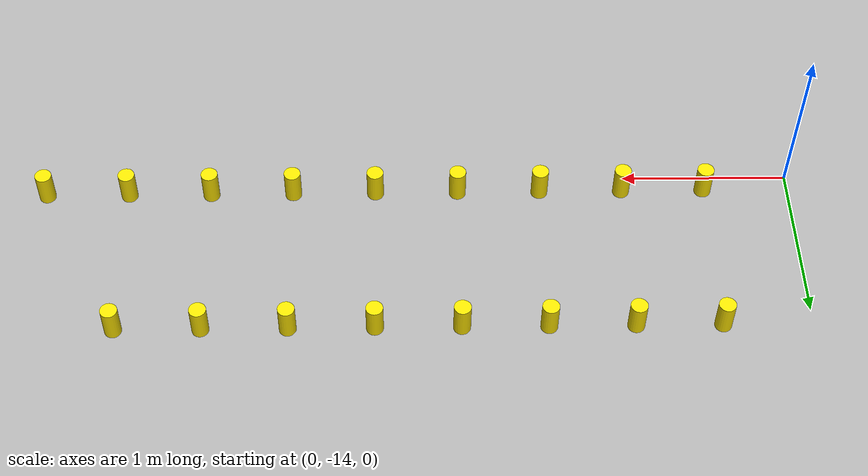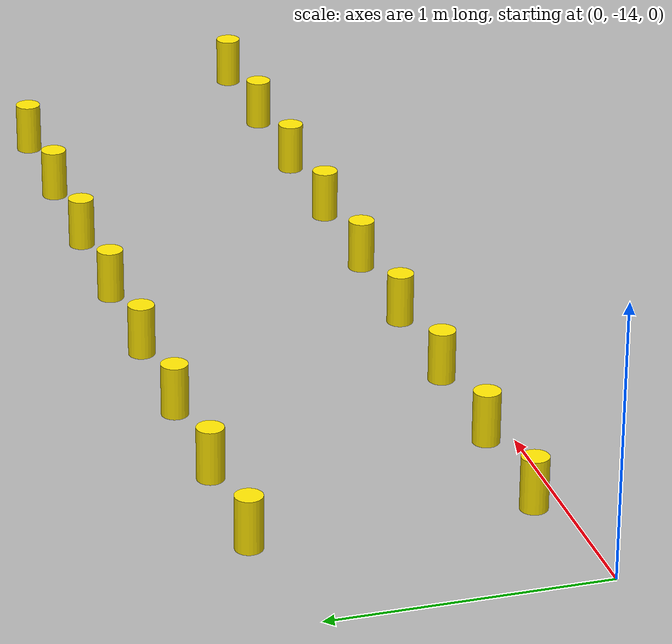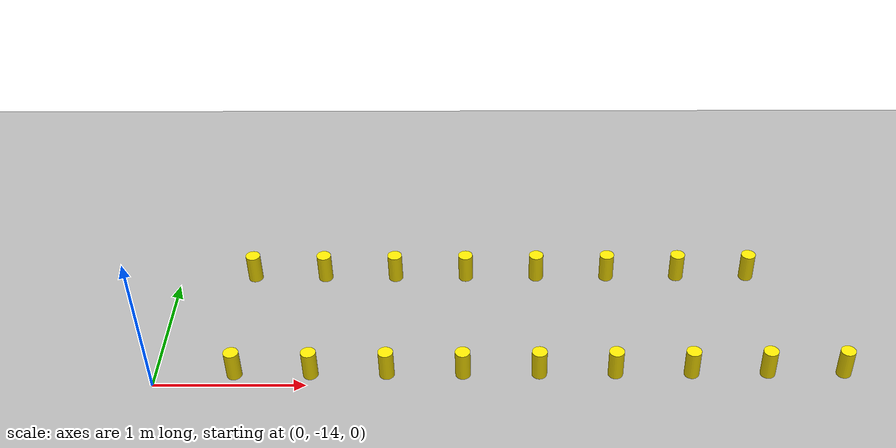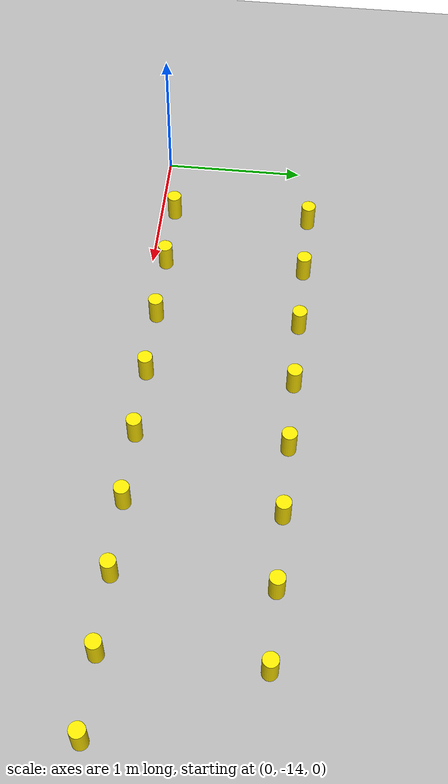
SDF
<sdf version="1.7">
 <world name="cone_lane">
  <model name="ground_plane">
   <static>true</static>
   <link name="link">
    <collision name="collision">
     <geometry><plane><normal>0 0 1</normal><size>150 150</size></plane></geometry>
     <surface><friction><ode><mu>1.0</mu></ode></friction></surface>
    </collision>
    <visual name="visual">
     <geometry><plane><normal>0 0 1</normal><size>100 100</size></plane></geometry>
     <material>
      <ambient>0.55 0.55 0.55 1</ambient>
      <diffuse>0.70 0.70 0.70 1</diffuse>
      <specular>0.05 0.05 0.05 1</specular>
     </material>
    </visual>
   </link>
  </model>
  <model name="cone_L094">
   <static>true</static>
   <pose>0.520 -12.900 0.1 0 0 0</pose>
   <link name="link">
    <visual name="v">
     <geometry><cylinder><radius>0.05</radius><length>0.2</length></cylinder></geometry>
     <material>
      <ambient>0.9 0.8 0.0 1</ambient>
      <diffuse>1.0 0.9 0.0 1</diffuse>
      <specular>0.2 0.2 0.0 1</specular>
     </material>
    </visual>
    <collision name="c">
     <geometry><cylinder><radius>0.05</radius><length>0.2</length></cylinder></geometry>
    </collision>
   </link>
  </model>
  <model name="cone_L095">
   <static>true</static>
   <pose>1.020 -12.900 0.1 0 0 0</pose>
   <link name="link">
    <visual name="v">
     <geometry><cylinder><radius>0.05</radius><length>0.2</length></cylinder></geometry>
     <material>
      <ambient>0.9 0.8 0.0 1</ambient>
      <diffuse>1.0 0.9 0.0 1</diffuse>
      <specular>0.2 0.2 0.0 1</specular>
     </material>
    </visual>
    <collision name="c">
     <geometry><cylinder><radius>0.05</radius><length>0.2</length></cylinder></geometry>
    </collision>
   </link>
  </model>
  <model name="cone_L096">
   <static>true</static>
   <pose>1.520 -12.900 0.1 0 0 0</pose>
   <link name="link">
    <visual name="v">
     <geometry><cylinder><radius>0.05</radius><length>0.2</length></cylinder></geometry>
     <material>
      <ambient>0.9 0.8 0.0 1</ambient>
      <diffuse>1.0 0.9 0.0 1</diffuse>
      <specular>0.2 0.2 0.0 1</specular>
     </material>
    </visual>
    <collision name="c">
     <geometry><cylinder><radius>0.05</radius><length>0.2</length></cylinder></geometry>
    </collision>
   </link>
  </model>
  <model name="cone_L097">
   <static>true</static>
   <pose>2.020 -12.900 0.1 0 0 0</pose>
   <link name="link">
    <visual name="v">
     <geometry><cylinder><radius>0.05</radius><length>0.2</length></cylinder></geometry>
     <material>
      <ambient>0.9 0.8 0.0 1</ambient>
      <diffuse>1.0 0.9 0.0 1</diffuse>
      <specular>0.2 0.2 0.0 1</specular>
     </material>
    </visual>
    <collision name="c">
     <geometry><cylinder><radius>0.05</radius><length>0.2</length></cylinder></geometry>
    </collision>
   </link>
  </model>
  <model name="cone_L098">
   <static>true</static>
   <pose>2.520 -12.900 0.1 0 0 0</pose>
   <link name="link">
    <visual name="v">
     <geometry><cylinder><radius>0.05</radius><length>0.2</length></cylinder></geometry>
     <material>
      <ambient>0.9 0.8 0.0 1</ambient>
      <diffuse>1.0 0.9 0.0 1</diffuse>
      <specular>0.2 0.2 0.0 1</specular>
     </material>
    </visual>
    <collision name="c">
     <geometry><cylinder><radius>0.05</radius><length>0.2</length></cylinder></geometry>
    </collision>
   </link>
  </model>
  <model name="cone_L099">
   <static>true</static>
   <pose>3.020 -12.900 0.1 0 0 0</pose>
   <link name="link">
    <visual name="v">
     <geometry><cylinder><radius>0.05</radius><length>0.2</length></cylinder></geometry>
     <material>
      <ambient>0.9 0.8 0.0 1</ambient>
      <diffuse>1.0 0.9 0.0 1</diffuse>
      <specular>0.2 0.2 0.0 1</specular>
     </material>
    </visual>
    <collision name="c">
     <geometry><cylinder><radius>0.05</radius><length>0.2</length></cylinder></geometry>
    </collision>
   </link>
  </model>
  <model name="cone_L100">
   <static>true</static>
   <pose>3.520 -12.900 0.1 0 0 0</pose>
   <link name="link">
    <visual name="v">
     <geometry><cylinder><radius>0.05</radius><length>0.2</length></cylinder></geometry>
     <material>
      <ambient>0.9 0.8 0.0 1</ambient>
      <diffuse>1.0 0.9 0.0 1</diffuse>
      <specular>0.2 0.2 0.0 1</specular>
     </material>
    </visual>
    <collision name="c">
     <geometry><cylinder><radius>0.05</radius><length>0.2</length></cylinder></geometry>
    </collision>
   </link>
  </model>
  <model name="cone_L101">
   <static>true</static>
   <pose>4.020 -12.900 0.1 0 0 0</pose>
   <link name="link">
    <visual name="v">
     <geometry><cylinder><radius>0.05</radius><length>0.2</length></cylinder></geometry>
     <material>
      <ambient>0.9 0.8 0.0 1</ambient>
      <diffuse>1.0 0.9 0.0 1</diffuse>
      <specular>0.2 0.2 0.0 1</specular>
     </material>
    </visual>
    <collision name="c">
     <geometry><cylinder><radius>0.05</radius><length>0.2</length></cylinder></geometry>
    </collision>
   </link>
  </model>
  <model name="cone_R094">
   <static>true</static>
   <pose>0.520 -13.900 0.1 0 0 0</pose>
   <link name="link">
    <visual name="v">
     <geometry><cylinder><radius>0.05</radius><length>0.2</length></cylinder></geometry>
     <material>
      <ambient>0.9 0.8 0.0 1</ambient>
      <diffuse>1.0 0.9 0.0 1</diffuse>
      <specular>0.2 0.2 0.0 1</specular>
     </material>
    </visual>
    <collision name="c">
     <geometry><cylinder><radius>0.05</radius><length>0.2</length></cylinder></geometry>
    </collision>
   </link>
  </model>
  <model name="cone_R095">
   <static>true</static>
   <pose>1.020 -13.900 0.1 0 0 0</pose>
   <link name="link">
    <visual name="v">
     <geometry><cylinder><radius>0.05</radius><length>0.2</length></cylinder></geometry>
     <material>
      <ambient>0.9 0.8 0.0 1</ambient>
      <diffuse>1.0 0.9 0.0 1</diffuse>
      <specular>0.2 0.2 0.0 1</specular>
     </material>
    </visual>
    <collision name="c">
     <geometry><cylinder><radius>0.05</radius><length>0.2</length></cylinder></geometry>
    </collision>
   </link>
  </model>
  <model name="cone_R096">
   <static>true</static>
   <pose>1.520 -13.900 0.1 0 0 0</pose>
   <link name="link">
    <visual name="v">
     <geometry><cylinder><radius>0.05</radius><length>0.2</length></cylinder></geometry>
     <material>
      <ambient>0.9 0.8 0.0 1</ambient>
      <diffuse>1.0 0.9 0.0 1</diffuse>
      <specular>0.2 0.2 0.0 1</specular>
     </material>
    </visual>
    <collision name="c">
     <geometry><cylinder><radius>0.05</radius><length>0.2</length></cylinder></geometry>
    </collision>
   </link>
  </model>
  <model name="cone_R097">
   <static>true</static>
   <pose>2.020 -13.900 0.1 0 0 0</pose>
   <link name="link">
    <visual name="v">
     <geometry><cylinder><radius>0.05</radius><length>0.2</length></cylinder></geometry>
     <material>
      <ambient>0.9 0.8 0.0 1</ambient>
      <diffuse>1.0 0.9 0.0 1</diffuse>
      <specular>0.2 0.2 0.0 1</specular>
     </material>
    </visual>
    <collision name="c">
     <geometry><cylinder><radius>0.05</radius><length>0.2</length></cylinder></geometry>
    </collision>
   </link>
  </model>
  <model name="cone_R098">
   <static>true</static>
   <pose>2.520 -13.900 0.1 0 0 0</pose>
   <link name="link">
    <visual name="v">
     <geometry><cylinder><radius>0.05</radius><length>0.2</length></cylinder></geometry>
     <material>
      <ambient>0.9 0.8 0.0 1</ambient>
      <diffuse>1.0 0.9 0.0 1</diffuse>
      <specular>0.2 0.2 0.0 1</specular>
     </material>
    </visual>
    <collision name="c">
     <geometry><cylinder><radius>0.05</radius><length>0.2</length></cylinder></geometry>
    </collision>
   </link>
  </model>
  <model name="cone_R099">
   <static>true</static>
   <pose>3.020 -13.900 0.1 0 0 0</pose>
   <link name="link">
    <visual name="v">
     <geometry><cylinder><radius>0.05</radius><length>0.2</length></cylinder></geometry>
     <material>
      <ambient>0.9 0.8 0.0 1</ambient>
      <diffuse>1.0 0.9 0.0 1</diffuse>
      <specular>0.2 0.2 0.0 1</specular>
     </material>
    </visual>
    <collision name="c">
     <geometry><cylinder><radius>0.05</radius><length>0.2</length></cylinder></geometry>
    </collision>
   </link>
  </model>
  <model name="cone_R100">
   <static>true</static>
   <pose>3.520 -13.900 0.1 0 0 0</pose>
   <link name="link">
    <visual name="v">
     <geometry><cylinder><radius>0.05</radius><length>0.2</length></cylinder></geometry>
     <material>
      <ambient>0.9 0.8 0.0 1</ambient>
      <diffuse>1.0 0.9 0.0 1</diffuse>
      <specular>0.2 0.2 0.0 1</specular>
     </material>
    </visual>
    <collision name="c">
     <geometry><cylinder><radius>0.05</radius><length>0.2</length></cylinder></geometry>
    </collision>
   </link>
  </model>
  <model name="cone_R101">
   <static>true</static>
   <pose>4.020 -13.900 0.1 0 0 0</pose>
   <link name="link">
    <visual name="v">
     <geometry><cylinder><radius>0.05</radius><length>0.2</length></cylinder></geometry>
     <material>
      <ambient>0.9 0.8 0.0 1</ambient>
      <diffuse>1.0 0.9 0.0 1</diffuse>
      <specular>0.2 0.2 0.0 1</specular>
     </material>
    </visual>
    <collision name="c">
     <geometry><cylinder><radius>0.05</radius><length>0.2</length></cylinder></geometry>
    </collision>
   </link>
  </model>
  <model name="cone_R102">
   <static>true</static>
   <pose>4.520 -13.900 0.1 0 0 0</pose>
   <link name="link">
    <visual name="v">
     <geometry><cylinder><radius>0.05</radius><length>0.2</length></cylinder></geometry>
     <material>
      <ambient>0.9 0.8 0.0 1</ambient>
      <diffuse>1.0 0.9 0.0 1</diffuse>
      <specular>0.2 0.2 0.0 1</specular>
     </material>
    </visual>
    <collision name="c">
     <geometry><cylinder><radius>0.05</radius><length>0.2</length></cylinder></geometry>
    </collision>
   </link>
  </model>
 </world>
</sdf>
